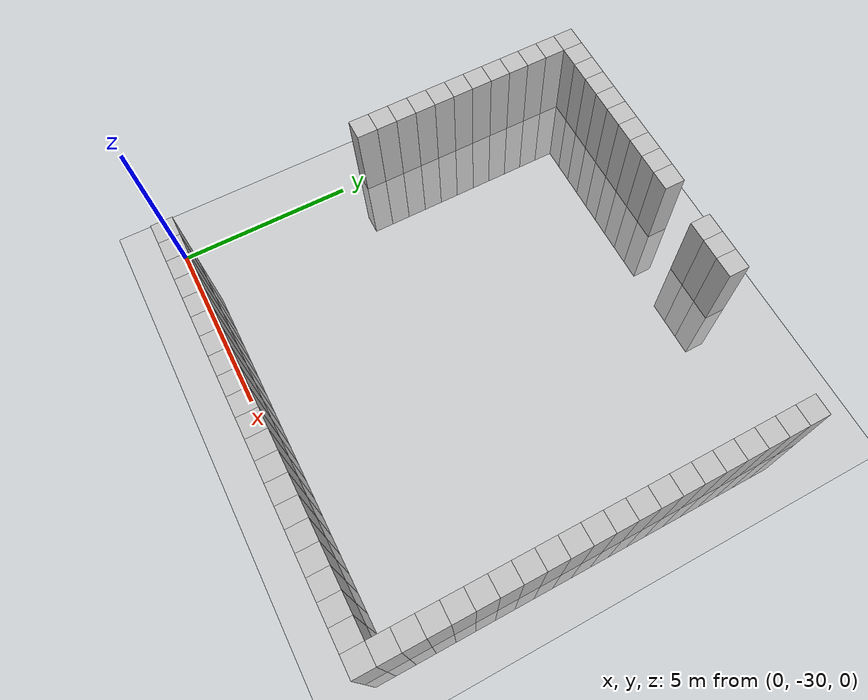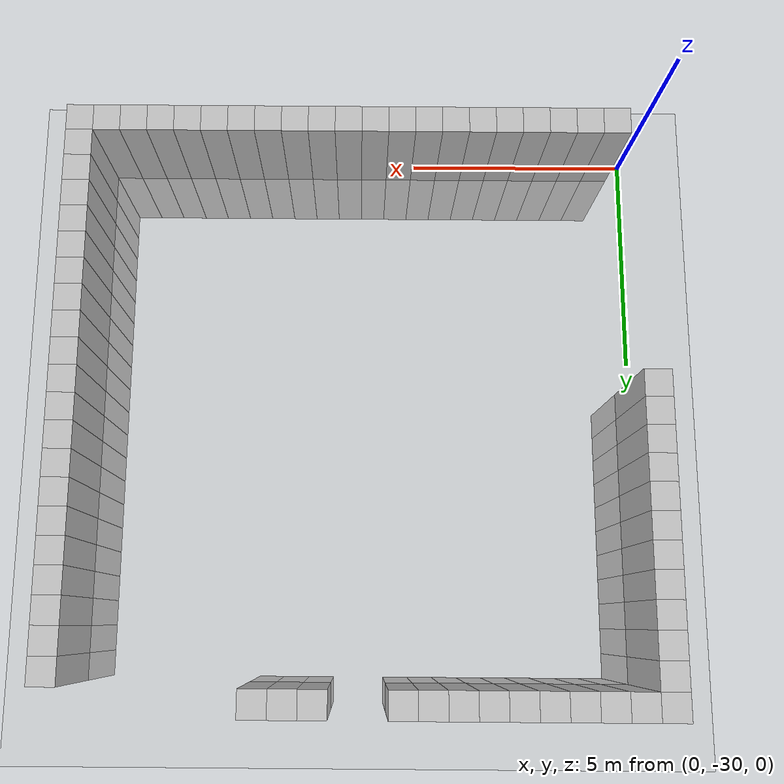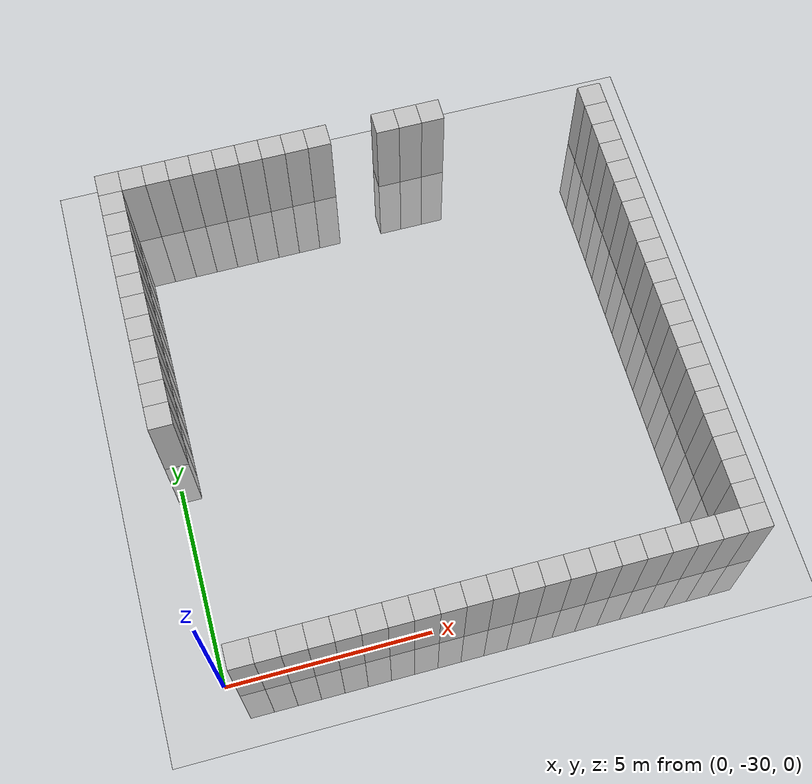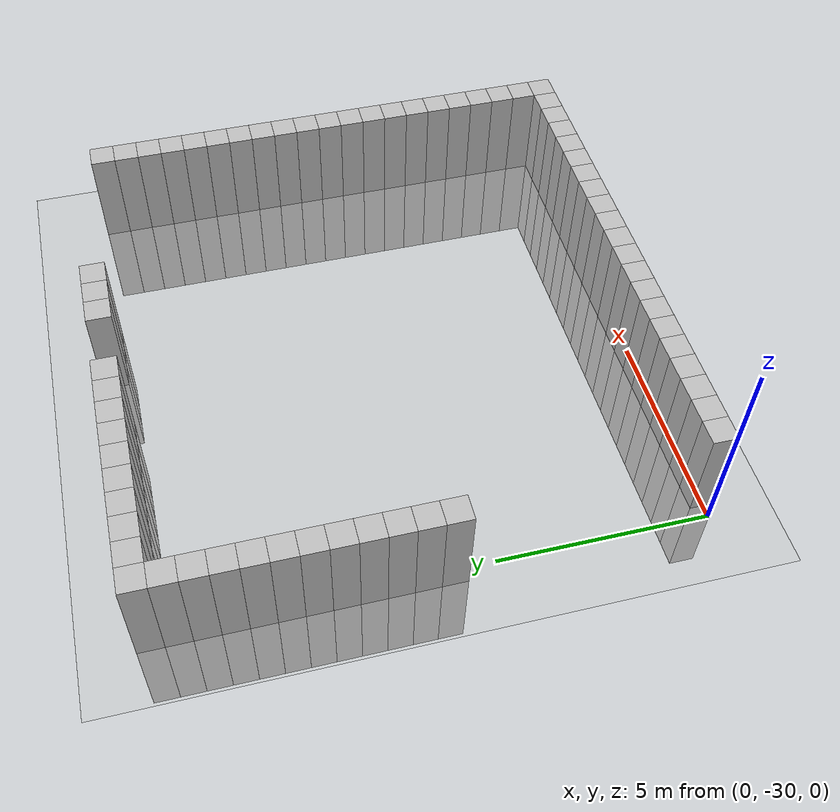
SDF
<sdf version="1.6">
 <world name="default">
  <model name="ground_plane">
   <static>1</static>
   <link name="link">
    <collision name="collision">
     <geometry><plane><normal>0 0 1</normal><size>100 100</size></plane></geometry>
     <surface><friction><ode><mu>100</mu><mu2>50</mu2></ode></friction></surface>
    </collision>
    <visual name="visual">
     <cast_shadows>0</cast_shadows>
     <geometry><plane><normal>0 0 1</normal><size>100 100</size></plane></geometry>
     <material>
      <script><uri>file://media/materials/scripts/gazebo.material</uri><name>Gazebo/Grey</name></script>
     </material>
    </visual>
   </link>
  </model>
  <model name="unit_cylinder_697">
   <static>1</static>
   <pose>0 -24 0 0 -0 0</pose>
   <link name="link">
    <inertial>
     <mass>1</mass>
     <inertia><ixx>0.145833</ixx><ixy>0</ixy><ixz>0</ixz><iyy>0.145833</iyy><iyz>0</iyz><izz>0.125</izz></inertia>
    </inertial>
    <collision name="collision"><geometry><box><size>0.6 0.6 5</size></box></geometry></collision>
    <visual name="visual">
     <geometry><box><size>0.6 0.6 5</size></box></geometry>
     <material><ambient>0.753 0.753 0.753 1</ambient><diffuse>0.753 0.753 0.753 1</diffuse></material>
     <material>
      <script><name>Gazebo/Grey</name><uri>file://media/materials/scripts/gazebo.material</uri></script>
     </material>
    </visual>
   </link>
  </model>
  <model name="unit_cylinder_698">
   <static>1</static>
   <pose>0 -23.4 0 0 -0 0</pose>
   <link name="link">
    <inertial>
     <mass>1</mass>
     <inertia><ixx>0.145833</ixx><ixy>0</ixy><ixz>0</ixz><iyy>0.145833</iyy><iyz>0</iyz><izz>0.125</izz></inertia>
    </inertial>
    <collision name="collision"><geometry><box><size>0.6 0.6 5</size></box></geometry></collision>
    <visual name="visual">
     <geometry><box><size>0.6 0.6 5</size></box></geometry>
     <material><ambient>0.753 0.753 0.753 1</ambient><diffuse>0.753 0.753 0.753 1</diffuse></material>
     <material>
      <script><name>Gazebo/Grey</name><uri>file://media/materials/scripts/gazebo.material</uri></script>
     </material>
    </visual>
   </link>
  </model>
  <model name="unit_cylinder_699">
   <static>1</static>
   <pose>0 -22.8 0 0 -0 0</pose>
   <link name="link">
    <inertial>
     <mass>1</mass>
     <inertia><ixx>0.145833</ixx><ixy>0</ixy><ixz>0</ixz><iyy>0.145833</iyy><iyz>0</iyz><izz>0.125</izz></inertia>
    </inertial>
    <collision name="collision"><geometry><box><size>0.6 0.6 5</size></box></geometry></collision>
    <visual name="visual">
     <geometry><box><size>0.6 0.6 5</size></box></geometry>
     <material><ambient>0.753 0.753 0.753 1</ambient><diffuse>0.753 0.753 0.753 1</diffuse></material>
     <material>
      <script><name>Gazebo/Grey</name><uri>file://media/materials/scripts/gazebo.material</uri></script>
     </material>
    </visual>
   </link>
  </model>
  <model name="unit_cylinder_700">
   <static>1</static>
   <pose>0 -22.2 0 0 -0 0</pose>
   <link name="link">
    <inertial>
     <mass>1</mass>
     <inertia><ixx>0.145833</ixx><ixy>0</ixy><ixz>0</ixz><iyy>0.145833</iyy><iyz>0</iyz><izz>0.125</izz></inertia>
    </inertial>
    <collision name="collision"><geometry><box><size>0.6 0.6 5</size></box></geometry></collision>
    <visual name="visual">
     <geometry><box><size>0.6 0.6 5</size></box></geometry>
     <material><ambient>0.753 0.753 0.753 1</ambient><diffuse>0.753 0.753 0.753 1</diffuse></material>
     <material>
      <script><name>Gazebo/Grey</name><uri>file://media/materials/scripts/gazebo.material</uri></script>
     </material>
    </visual>
   </link>
  </model>
  <model name="unit_cylinder_701">
   <static>1</static>
   <pose>0 -21.6 0 0 -0 0</pose>
   <link name="link">
    <inertial>
     <mass>1</mass>
     <inertia><ixx>0.145833</ixx><ixy>0</ixy><ixz>0</ixz><iyy>0.145833</iyy><iyz>0</iyz><izz>0.125</izz></inertia>
    </inertial>
    <collision name="collision"><geometry><box><size>0.6 0.6 5</size></box></geometry></collision>
    <visual name="visual">
     <geometry><box><size>0.6 0.6 5</size></box></geometry>
     <material><ambient>0.753 0.753 0.753 1</ambient><diffuse>0.753 0.753 0.753 1</diffuse></material>
     <material>
      <script><name>Gazebo/Grey</name><uri>file://media/materials/scripts/gazebo.material</uri></script>
     </material>
    </visual>
   </link>
  </model>
  <model name="unit_cylinder_702">
   <static>1</static>
   <pose>0 -21 0 0 -0 0</pose>
   <link name="link">
    <inertial>
     <mass>1</mass>
     <inertia><ixx>0.145833</ixx><ixy>0</ixy><ixz>0</ixz><iyy>0.145833</iyy><iyz>0</iyz><izz>0.125</izz></inertia>
    </inertial>
    <collision name="collision"><geometry><box><size>0.6 0.6 5</size></box></geometry></collision>
    <visual name="visual">
     <geometry><box><size>0.6 0.6 5</size></box></geometry>
     <material><ambient>0.753 0.753 0.753 1</ambient><diffuse>0.753 0.753 0.753 1</diffuse></material>
     <material>
      <script><name>Gazebo/Grey</name><uri>file://media/materials/scripts/gazebo.material</uri></script>
     </material>
    </visual>
   </link>
  </model>
  <model name="unit_cylinder_703">
   <static>1</static>
   <pose>0 -20.4 0 0 -0 0</pose>
   <link name="link">
    <inertial>
     <mass>1</mass>
     <inertia><ixx>0.145833</ixx><ixy>0</ixy><ixz>0</ixz><iyy>0.145833</iyy><iyz>0</iyz><izz>0.125</izz></inertia>
    </inertial>
    <collision name="collision"><geometry><box><size>0.6 0.6 5</size></box></geometry></collision>
    <visual name="visual">
     <geometry><box><size>0.6 0.6 5</size></box></geometry>
     <material><ambient>0.753 0.753 0.753 1</ambient><diffuse>0.753 0.753 0.753 1</diffuse></material>
     <material>
      <script><name>Gazebo/Grey</name><uri>file://media/materials/scripts/gazebo.material</uri></script>
     </material>
    </visual>
   </link>
  </model>
  <model name="unit_cylinder_704">
   <static>1</static>
   <pose>0 -19.8 0 0 -0 0</pose>
   <link name="link">
    <inertial>
     <mass>1</mass>
     <inertia><ixx>0.145833</ixx><ixy>0</ixy><ixz>0</ixz><iyy>0.145833</iyy><iyz>0</iyz><izz>0.125</izz></inertia>
    </inertial>
    <collision name="collision"><geometry><box><size>0.6 0.6 5</size></box></geometry></collision>
    <visual name="visual">
     <geometry><box><size>0.6 0.6 5</size></box></geometry>
     <material><ambient>0.753 0.753 0.753 1</ambient><diffuse>0.753 0.753 0.753 1</diffuse></material>
     <material>
      <script><name>Gazebo/Grey</name><uri>file://media/materials/scripts/gazebo.material</uri></script>
     </material>
    </visual>
   </link>
  </model>
  <model name="unit_cylinder_705">
   <static>1</static>
   <pose>0 -19.2 0 0 -0 0</pose>
   <link name="link">
    <inertial>
     <mass>1</mass>
     <inertia><ixx>0.145833</ixx><ixy>0</ixy><ixz>0</ixz><iyy>0.145833</iyy><iyz>0</iyz><izz>0.125</izz></inertia>
    </inertial>
    <collision name="collision"><geometry><box><size>0.6 0.6 5</size></box></geometry></collision>
    <visual name="visual">
     <geometry><box><size>0.6 0.6 5</size></box></geometry>
     <material><ambient>0.753 0.753 0.753 1</ambient><diffuse>0.753 0.753 0.753 1</diffuse></material>
     <material>
      <script><name>Gazebo/Grey</name><uri>file://media/materials/scripts/gazebo.material</uri></script>
     </material>
    </visual>
   </link>
  </model>
  <model name="unit_cylinder_706">
   <static>1</static>
   <pose>0 -18.6 0 0 -0 0</pose>
   <link name="link">
    <inertial>
     <mass>1</mass>
     <inertia><ixx>0.145833</ixx><ixy>0</ixy><ixz>0</ixz><iyy>0.145833</iyy><iyz>0</iyz><izz>0.125</izz></inertia>
    </inertial>
    <collision name="collision"><geometry><box><size>0.6 0.6 5</size></box></geometry></collision>
    <visual name="visual">
     <geometry><box><size>0.6 0.6 5</size></box></geometry>
     <material><ambient>0.753 0.753 0.753 1</ambient><diffuse>0.753 0.753 0.753 1</diffuse></material>
     <material>
      <script><name>Gazebo/Grey</name><uri>file://media/materials/scripts/gazebo.material</uri></script>
     </material>
    </visual>
   </link>
  </model>
  <model name="unit_cylinder_707">
   <static>1</static>
   <pose>0 -18 0 0 -0 0</pose>
   <link name="link">
    <inertial>
     <mass>1</mass>
     <inertia><ixx>0.145833</ixx><ixy>0</ixy><ixz>0</ixz><iyy>0.145833</iyy><iyz>0</iyz><izz>0.125</izz></inertia>
    </inertial>
    <collision name="collision"><geometry><box><size>0.6 0.6 5</size></box></geometry></collision>
    <visual name="visual">
     <geometry><box><size>0.6 0.6 5</size></box></geometry>
     <material><ambient>0.753 0.753 0.753 1</ambient><diffuse>0.753 0.753 0.753 1</diffuse></material>
     <material>
      <script><name>Gazebo/Grey</name><uri>file://media/materials/scripts/gazebo.material</uri></script>
     </material>
    </visual>
   </link>
  </model>
  <model name="unit_cylinder_708">
   <static>1</static>
   <pose>0 -17.4 0 0 -0 0</pose>
   <link name="link">
    <inertial>
     <mass>1</mass>
     <inertia><ixx>0.145833</ixx><ixy>0</ixy><ixz>0</ixz><iyy>0.145833</iyy><iyz>0</iyz><izz>0.125</izz></inertia>
    </inertial>
    <collision name="collision"><geometry><box><size>0.6 0.6 5</size></box></geometry></collision>
    <visual name="visual">
     <geometry><box><size>0.6 0.6 5</size></box></geometry>
     <material><ambient>0.753 0.753 0.753 1</ambient><diffuse>0.753 0.753 0.753 1</diffuse></material>
     <material>
      <script><name>Gazebo/Grey</name><uri>file://media/materials/scripts/gazebo.material</uri></script>
     </material>
    </visual>
   </link>
  </model>
  <model name="unit_cylinder_730">
   <static>1</static>
   <pose>0.6 -30 0 0 -0 0</pose>
   <link name="link">
    <inertial>
     <mass>1</mass>
     <inertia><ixx>0.145833</ixx><ixy>0</ixy><ixz>0</ixz><iyy>0.145833</iyy><iyz>0</iyz><izz>0.125</izz></inertia>
    </inertial>
    <collision name="collision"><geometry><box><size>0.6 0.6 5</size></box></geometry></collision>
    <visual name="visual">
     <geometry><box><size>0.6 0.6 5</size></box></geometry>
     <material><ambient>0.753 0.753 0.753 1</ambient><diffuse>0.753 0.753 0.753 1</diffuse></material>
     <material>
      <script><name>Gazebo/Grey</name><uri>file://media/materials/scripts/gazebo.material</uri></script>
     </material>
    </visual>
   </link>
  </model>
  <model name="unit_cylinder_731">
   <static>1</static>
   <pose>0.6 -17.4 0 0 -0 0</pose>
   <link name="link">
    <inertial>
     <mass>1</mass>
     <inertia><ixx>0.145833</ixx><ixy>0</ixy><ixz>0</ixz><iyy>0.145833</iyy><iyz>0</iyz><izz>0.125</izz></inertia>
    </inertial>
    <collision name="collision"><geometry><box><size>0.6 0.6 5</size></box></geometry></collision>
    <visual name="visual">
     <geometry><box><size>0.6 0.6 5</size></box></geometry>
     <material><ambient>0.753 0.753 0.753 1</ambient><diffuse>0.753 0.753 0.753 1</diffuse></material>
     <material>
      <script><name>Gazebo/Grey</name><uri>file://media/materials/scripts/gazebo.material</uri></script>
     </material>
    </visual>
   </link>
  </model>
  <model name="unit_cylinder_733">
   <static>1</static>
   <pose>1.2 -30 0 0 -0 0</pose>
   <link name="link">
    <inertial>
     <mass>1</mass>
     <inertia><ixx>0.145833</ixx><ixy>0</ixy><ixz>0</ixz><iyy>0.145833</iyy><iyz>0</iyz><izz>0.125</izz></inertia>
    </inertial>
    <collision name="collision"><geometry><box><size>0.6 0.6 5</size></box></geometry></collision>
    <visual name="visual">
     <geometry><box><size>0.6 0.6 5</size></box></geometry>
     <material><ambient>0.753 0.753 0.753 1</ambient><diffuse>0.753 0.753 0.753 1</diffuse></material>
     <material>
      <script><name>Gazebo/Grey</name><uri>file://media/materials/scripts/gazebo.material</uri></script>
     </material>
    </visual>
   </link>
  </model>
  <model name="unit_cylinder_734">
   <static>1</static>
   <pose>1.2 -17.4 0 0 -0 0</pose>
   <link name="link">
    <inertial>
     <mass>1</mass>
     <inertia><ixx>0.145833</ixx><ixy>0</ixy><ixz>0</ixz><iyy>0.145833</iyy><iyz>0</iyz><izz>0.125</izz></inertia>
    </inertial>
    <collision name="collision"><geometry><box><size>0.6 0.6 5</size></box></geometry></collision>
    <visual name="visual">
     <geometry><box><size>0.6 0.6 5</size></box></geometry>
     <material><ambient>0.753 0.753 0.753 1</ambient><diffuse>0.753 0.753 0.753 1</diffuse></material>
     <material>
      <script><name>Gazebo/Grey</name><uri>file://media/materials/scripts/gazebo.material</uri></script>
     </material>
    </visual>
   </link>
  </model>
  <model name="unit_cylinder_736">
   <static>1</static>
   <pose>1.8 -30 0 0 -0 0</pose>
   <link name="link">
    <inertial>
     <mass>1</mass>
     <inertia><ixx>0.145833</ixx><ixy>0</ixy><ixz>0</ixz><iyy>0.145833</iyy><iyz>0</iyz><izz>0.125</izz></inertia>
    </inertial>
    <collision name="collision"><geometry><box><size>0.6 0.6 5</size></box></geometry></collision>
    <visual name="visual">
     <geometry><box><size>0.6 0.6 5</size></box></geometry>
     <material><ambient>0.753 0.753 0.753 1</ambient><diffuse>0.753 0.753 0.753 1</diffuse></material>
     <material>
      <script><name>Gazebo/Grey</name><uri>file://media/materials/scripts/gazebo.material</uri></script>
     </material>
    </visual>
   </link>
  </model>
  <model name="unit_cylinder_737">
   <static>1</static>
   <pose>1.8 -17.4 0 0 -0 0</pose>
   <link name="link">
    <inertial>
     <mass>1</mass>
     <inertia><ixx>0.145833</ixx><ixy>0</ixy><ixz>0</ixz><iyy>0.145833</iyy><iyz>0</iyz><izz>0.125</izz></inertia>
    </inertial>
    <collision name="collision"><geometry><box><size>0.6 0.6 5</size></box></geometry></collision>
    <visual name="visual">
     <geometry><box><size>0.6 0.6 5</size></box></geometry>
     <material><ambient>0.753 0.753 0.753 1</ambient><diffuse>0.753 0.753 0.753 1</diffuse></material>
     <material>
      <script><name>Gazebo/Grey</name><uri>file://media/materials/scripts/gazebo.material</uri></script>
     </material>
    </visual>
   </link>
  </model>
  <model name="unit_cylinder_739">
   <static>1</static>
   <pose>2.4 -30 0 0 -0 0</pose>
   <link name="link">
    <inertial>
     <mass>1</mass>
     <inertia><ixx>0.145833</ixx><ixy>0</ixy><ixz>0</ixz><iyy>0.145833</iyy><iyz>0</iyz><izz>0.125</izz></inertia>
    </inertial>
    <collision name="collision"><geometry><box><size>0.6 0.6 5</size></box></geometry></collision>
    <visual name="visual">
     <geometry><box><size>0.6 0.6 5</size></box></geometry>
     <material><ambient>0.753 0.753 0.753 1</ambient><diffuse>0.753 0.753 0.753 1</diffuse></material>
     <material>
      <script><name>Gazebo/Grey</name><uri>file://media/materials/scripts/gazebo.material</uri></script>
     </material>
    </visual>
   </link>
  </model>
  <model name="unit_cylinder_740">
   <static>1</static>
   <pose>2.4 -17.4 0 0 -0 0</pose>
   <link name="link">
    <inertial>
     <mass>1</mass>
     <inertia><ixx>0.145833</ixx><ixy>0</ixy><ixz>0</ixz><iyy>0.145833</iyy><iyz>0</iyz><izz>0.125</izz></inertia>
    </inertial>
    <collision name="collision"><geometry><box><size>0.6 0.6 5</size></box></geometry></collision>
    <visual name="visual">
     <geometry><box><size>0.6 0.6 5</size></box></geometry>
     <material><ambient>0.753 0.753 0.753 1</ambient><diffuse>0.753 0.753 0.753 1</diffuse></material>
     <material>
      <script><name>Gazebo/Grey</name><uri>file://media/materials/scripts/gazebo.material</uri></script>
     </material>
    </visual>
   </link>
  </model>
  <model name="unit_cylinder_742">
   <static>1</static>
   <pose>3 -30 0 0 -0 0</pose>
   <link name="link">
    <inertial>
     <mass>1</mass>
     <inertia><ixx>0.145833</ixx><ixy>0</ixy><ixz>0</ixz><iyy>0.145833</iyy><iyz>0</iyz><izz>0.125</izz></inertia>
    </inertial>
    <collision name="collision"><geometry><box><size>0.6 0.6 5</size></box></geometry></collision>
    <visual name="visual">
     <geometry><box><size>0.6 0.6 5</size></box></geometry>
     <material><ambient>0.753 0.753 0.753 1</ambient><diffuse>0.753 0.753 0.753 1</diffuse></material>
     <material>
      <script><name>Gazebo/Grey</name><uri>file://media/materials/scripts/gazebo.material</uri></script>
     </material>
    </visual>
   </link>
  </model>
  <model name="unit_cylinder_743">
   <static>1</static>
   <pose>3 -17.4 0 0 -0 0</pose>
   <link name="link">
    <inertial>
     <mass>1</mass>
     <inertia><ixx>0.145833</ixx><ixy>0</ixy><ixz>0</ixz><iyy>0.145833</iyy><iyz>0</iyz><izz>0.125</izz></inertia>
    </inertial>
    <collision name="collision"><geometry><box><size>0.6 0.6 5</size></box></geometry></collision>
    <visual name="visual">
     <geometry><box><size>0.6 0.6 5</size></box></geometry>
     <material><ambient>0.753 0.753 0.753 1</ambient><diffuse>0.753 0.753 0.753 1</diffuse></material>
     <material>
      <script><name>Gazebo/Grey</name><uri>file://media/materials/scripts/gazebo.material</uri></script>
     </material>
    </visual>
   </link>
  </model>
  <model name="unit_cylinder_745">
   <static>1</static>
   <pose>3.6 -30 0 0 -0 0</pose>
   <link name="link">
    <inertial>
     <mass>1</mass>
     <inertia><ixx>0.145833</ixx><ixy>0</ixy><ixz>0</ixz><iyy>0.145833</iyy><iyz>0</iyz><izz>0.125</izz></inertia>
    </inertial>
    <collision name="collision"><geometry><box><size>0.6 0.6 5</size></box></geometry></collision>
    <visual name="visual">
     <geometry><box><size>0.6 0.6 5</size></box></geometry>
     <material><ambient>0.753 0.753 0.753 1</ambient><diffuse>0.753 0.753 0.753 1</diffuse></material>
     <material>
      <script><name>Gazebo/Grey</name><uri>file://media/materials/scripts/gazebo.material</uri></script>
     </material>
    </visual>
   </link>
  </model>
  <model name="unit_cylinder_746">
   <static>1</static>
   <pose>3.6 -17.4 0 0 -0 0</pose>
   <link name="link">
    <inertial>
     <mass>1</mass>
     <inertia><ixx>0.145833</ixx><ixy>0</ixy><ixz>0</ixz><iyy>0.145833</iyy><iyz>0</iyz><izz>0.125</izz></inertia>
    </inertial>
    <collision name="collision"><geometry><box><size>0.6 0.6 5</size></box></geometry></collision>
    <visual name="visual">
     <geometry><box><size>0.6 0.6 5</size></box></geometry>
     <material><ambient>0.753 0.753 0.753 1</ambient><diffuse>0.753 0.753 0.753 1</diffuse></material>
     <material>
      <script><name>Gazebo/Grey</name><uri>file://media/materials/scripts/gazebo.material</uri></script>
     </material>
    </visual>
   </link>
  </model>
  <model name="unit_cylinder_748">
   <static>1</static>
   <pose>4.2 -30 0 0 -0 0</pose>
   <link name="link">
    <inertial>
     <mass>1</mass>
     <inertia><ixx>0.145833</ixx><ixy>0</ixy><ixz>0</ixz><iyy>0.145833</iyy><iyz>0</iyz><izz>0.125</izz></inertia>
    </inertial>
    <collision name="collision"><geometry><box><size>0.6 0.6 5</size></box></geometry></collision>
    <visual name="visual">
     <geometry><box><size>0.6 0.6 5</size></box></geometry>
     <material><ambient>0.753 0.753 0.753 1</ambient><diffuse>0.753 0.753 0.753 1</diffuse></material>
     <material>
      <script><name>Gazebo/Grey</name><uri>file://media/materials/scripts/gazebo.material</uri></script>
     </material>
    </visual>
   </link>
  </model>
  <model name="unit_cylinder_749">
   <static>1</static>
   <pose>4.2 -17.4 0 0 -0 0</pose>
   <link name="link">
    <inertial>
     <mass>1</mass>
     <inertia><ixx>0.145833</ixx><ixy>0</ixy><ixz>0</ixz><iyy>0.145833</iyy><iyz>0</iyz><izz>0.125</izz></inertia>
    </inertial>
    <collision name="collision"><geometry><box><size>0.6 0.6 5</size></box></geometry></collision>
    <visual name="visual">
     <geometry><box><size>0.6 0.6 5</size></box></geometry>
     <material><ambient>0.753 0.753 0.753 1</ambient><diffuse>0.753 0.753 0.753 1</diffuse></material>
     <material>
      <script><name>Gazebo/Grey</name><uri>file://media/materials/scripts/gazebo.material</uri></script>
     </material>
    </visual>
   </link>
  </model>
  <model name="unit_cylinder_751">
   <static>1</static>
   <pose>4.8 -30 0 0 -0 0</pose>
   <link name="link">
    <inertial>
     <mass>1</mass>
     <inertia><ixx>0.145833</ixx><ixy>0</ixy><ixz>0</ixz><iyy>0.145833</iyy><iyz>0</iyz><izz>0.125</izz></inertia>
    </inertial>
    <collision name="collision"><geometry><box><size>0.6 0.6 5</size></box></geometry></collision>
    <visual name="visual">
     <geometry><box><size>0.6 0.6 5</size></box></geometry>
     <material><ambient>0.753 0.753 0.753 1</ambient><diffuse>0.753 0.753 0.753 1</diffuse></material>
     <material>
      <script><name>Gazebo/Grey</name><uri>file://media/materials/scripts/gazebo.material</uri></script>
     </material>
    </visual>
   </link>
  </model>
  <model name="unit_cylinder_752">
   <static>1</static>
   <pose>4.8 -17.4 0 0 -0 0</pose>
   <link name="link">
    <inertial>
     <mass>1</mass>
     <inertia><ixx>0.145833</ixx><ixy>0</ixy><ixz>0</ixz><iyy>0.145833</iyy><iyz>0</iyz><izz>0.125</izz></inertia>
    </inertial>
    <collision name="collision"><geometry><box><size>0.6 0.6 5</size></box></geometry></collision>
    <visual name="visual">
     <geometry><box><size>0.6 0.6 5</size></box></geometry>
     <material><ambient>0.753 0.753 0.753 1</ambient><diffuse>0.753 0.753 0.753 1</diffuse></material>
     <material>
      <script><name>Gazebo/Grey</name><uri>file://media/materials/scripts/gazebo.material</uri></script>
     </material>
    </visual>
   </link>
  </model>
  <model name="unit_cylinder_754">
   <static>1</static>
   <pose>5.4 -30 0 0 -0 0</pose>
   <link name="link">
    <inertial>
     <mass>1</mass>
     <inertia><ixx>0.145833</ixx><ixy>0</ixy><ixz>0</ixz><iyy>0.145833</iyy><iyz>0</iyz><izz>0.125</izz></inertia>
    </inertial>
    <collision name="collision"><geometry><box><size>0.6 0.6 5</size></box></geometry></collision>
    <visual name="visual">
     <geometry><box><size>0.6 0.6 5</size></box></geometry>
     <material><ambient>0.753 0.753 0.753 1</ambient><diffuse>0.753 0.753 0.753 1</diffuse></material>
     <material>
      <script><name>Gazebo/Grey</name><uri>file://media/materials/scripts/gazebo.material</uri></script>
     </material>
    </visual>
   </link>
  </model>
  <model name="unit_cylinder_755">
   <static>1</static>
   <pose>5.4 -17.4 0 0 -0 0</pose>
   <link name="link">
    <inertial>
     <mass>1</mass>
     <inertia><ixx>0.145833</ixx><ixy>0</ixy><ixz>0</ixz><iyy>0.145833</iyy><iyz>0</iyz><izz>0.125</izz></inertia>
    </inertial>
    <collision name="collision"><geometry><box><size>0.6 0.6 5</size></box></geometry></collision>
    <visual name="visual">
     <geometry><box><size>0.6 0.6 5</size></box></geometry>
     <material><ambient>0.753 0.753 0.753 1</ambient><diffuse>0.753 0.753 0.753 1</diffuse></material>
     <material>
      <script><name>Gazebo/Grey</name><uri>file://media/materials/scripts/gazebo.material</uri></script>
     </material>
    </visual>
   </link>
  </model>
  <model name="unit_cylinder_757">
   <static>1</static>
   <pose>6 -30 0 0 -0 0</pose>
   <link name="link">
    <inertial>
     <mass>1</mass>
     <inertia><ixx>0.145833</ixx><ixy>0</ixy><ixz>0</ixz><iyy>0.145833</iyy><iyz>0</iyz><izz>0.125</izz></inertia>
    </inertial>
    <collision name="collision"><geometry><box><size>0.6 0.6 5</size></box></geometry></collision>
    <visual name="visual">
     <geometry><box><size>0.6 0.6 5</size></box></geometry>
     <material><ambient>0.753 0.753 0.753 1</ambient><diffuse>0.753 0.753 0.753 1</diffuse></material>
     <material>
      <script><name>Gazebo/Grey</name><uri>file://media/materials/scripts/gazebo.material</uri></script>
     </material>
    </visual>
   </link>
  </model>
  <model name="unit_cylinder_760">
   <static>1</static>
   <pose>6.6 -30 0 0 -0 0</pose>
   <link name="link">
    <inertial>
     <mass>1</mass>
     <inertia><ixx>0.145833</ixx><ixy>0</ixy><ixz>0</ixz><iyy>0.145833</iyy><iyz>0</iyz><izz>0.125</izz></inertia>
    </inertial>
    <collision name="collision"><geometry><box><size>0.6 0.6 5</size></box></geometry></collision>
    <visual name="visual">
     <geometry><box><size>0.6 0.6 5</size></box></geometry>
     <material><ambient>0.753 0.753 0.753 1</ambient><diffuse>0.753 0.753 0.753 1</diffuse></material>
     <material>
      <script><name>Gazebo/Grey</name><uri>file://media/materials/scripts/gazebo.material</uri></script>
     </material>
    </visual>
   </link>
  </model>
  <model name="unit_cylinder_763">
   <static>1</static>
   <pose>7.2 -30 0 0 -0 0</pose>
   <link name="link">
    <inertial>
     <mass>1</mass>
     <inertia><ixx>0.145833</ixx><ixy>0</ixy><ixz>0</ixz><iyy>0.145833</iyy><iyz>0</iyz><izz>0.125</izz></inertia>
    </inertial>
    <collision name="collision"><geometry><box><size>0.6 0.6 5</size></box></geometry></collision>
    <visual name="visual">
     <geometry><box><size>0.6 0.6 5</size></box></geometry>
     <material><ambient>0.753 0.753 0.753 1</ambient><diffuse>0.753 0.753 0.753 1</diffuse></material>
     <material>
      <script><name>Gazebo/Grey</name><uri>file://media/materials/scripts/gazebo.material</uri></script>
     </material>
    </visual>
   </link>
  </model>
  <model name="unit_cylinder_764">
   <static>1</static>
   <pose>7.2 -17.4 0 0 -0 0</pose>
   <link name="link">
    <inertial>
     <mass>1</mass>
     <inertia><ixx>0.145833</ixx><ixy>0</ixy><ixz>0</ixz><iyy>0.145833</iyy><iyz>0</iyz><izz>0.125</izz></inertia>
    </inertial>
    <collision name="collision"><geometry><box><size>0.6 0.6 5</size></box></geometry></collision>
    <visual name="visual">
     <geometry><box><size>0.6 0.6 5</size></box></geometry>
     <material><ambient>0.753 0.753 0.753 1</ambient><diffuse>0.753 0.753 0.753 1</diffuse></material>
     <material>
      <script><name>Gazebo/Grey</name><uri>file://media/materials/scripts/gazebo.material</uri></script>
     </material>
    </visual>
   </link>
  </model>
  <model name="unit_cylinder_766">
   <static>1</static>
   <pose>7.8 -30 0 0 -0 0</pose>
   <link name="link">
    <inertial>
     <mass>1</mass>
     <inertia><ixx>0.145833</ixx><ixy>0</ixy><ixz>0</ixz><iyy>0.145833</iyy><iyz>0</iyz><izz>0.125</izz></inertia>
    </inertial>
    <collision name="collision"><geometry><box><size>0.6 0.6 5</size></box></geometry></collision>
    <visual name="visual">
     <geometry><box><size>0.6 0.6 5</size></box></geometry>
     <material><ambient>0.753 0.753 0.753 1</ambient><diffuse>0.753 0.753 0.753 1</diffuse></material>
     <material>
      <script><name>Gazebo/Grey</name><uri>file://media/materials/scripts/gazebo.material</uri></script>
     </material>
    </visual>
   </link>
  </model>
  <model name="unit_cylinder_767">
   <static>1</static>
   <pose>7.8 -17.4 0 0 -0 0</pose>
   <link name="link">
    <inertial>
     <mass>1</mass>
     <inertia><ixx>0.145833</ixx><ixy>0</ixy><ixz>0</ixz><iyy>0.145833</iyy><iyz>0</iyz><izz>0.125</izz></inertia>
    </inertial>
    <collision name="collision"><geometry><box><size>0.6 0.6 5</size></box></geometry></collision>
    <visual name="visual">
     <geometry><box><size>0.6 0.6 5</size></box></geometry>
     <material><ambient>0.753 0.753 0.753 1</ambient><diffuse>0.753 0.753 0.753 1</diffuse></material>
     <material>
      <script><name>Gazebo/Grey</name><uri>file://media/materials/scripts/gazebo.material</uri></script>
     </material>
    </visual>
   </link>
  </model>
  <model name="unit_cylinder_769">
   <static>1</static>
   <pose>8.4 -30 0 0 -0 0</pose>
   <link name="link">
    <inertial>
     <mass>1</mass>
     <inertia><ixx>0.145833</ixx><ixy>0</ixy><ixz>0</ixz><iyy>0.145833</iyy><iyz>0</iyz><izz>0.125</izz></inertia>
    </inertial>
    <collision name="collision"><geometry><box><size>0.6 0.6 5</size></box></geometry></collision>
    <visual name="visual">
     <geometry><box><size>0.6 0.6 5</size></box></geometry>
     <material><ambient>0.753 0.753 0.753 1</ambient><diffuse>0.753 0.753 0.753 1</diffuse></material>
     <material>
      <script><name>Gazebo/Grey</name><uri>file://media/materials/scripts/gazebo.material</uri></script>
     </material>
    </visual>
   </link>
  </model>
  <model name="unit_cylinder_770">
   <static>1</static>
   <pose>8.4 -17.4 0 0 -0 0</pose>
   <link name="link">
    <inertial>
     <mass>1</mass>
     <inertia><ixx>0.145833</ixx><ixy>0</ixy><ixz>0</ixz><iyy>0.145833</iyy><iyz>0</iyz><izz>0.125</izz></inertia>
    </inertial>
    <collision name="collision"><geometry><box><size>0.6 0.6 5</size></box></geometry></collision>
    <visual name="visual">
     <geometry><box><size>0.6 0.6 5</size></box></geometry>
     <material><ambient>0.753 0.753 0.753 1</ambient><diffuse>0.753 0.753 0.753 1</diffuse></material>
     <material>
      <script><name>Gazebo/Grey</name><uri>file://media/materials/scripts/gazebo.material</uri></script>
     </material>
    </visual>
   </link>
  </model>
  <model name="unit_cylinder_772">
   <static>1</static>
   <pose>9 -30 0 0 -0 0</pose>
   <link name="link">
    <inertial>
     <mass>1</mass>
     <inertia><ixx>0.145833</ixx><ixy>0</ixy><ixz>0</ixz><iyy>0.145833</iyy><iyz>0</iyz><izz>0.125</izz></inertia>
    </inertial>
    <collision name="collision"><geometry><box><size>0.6 0.6 5</size></box></geometry></collision>
    <visual name="visual">
     <geometry><box><size>0.6 0.6 5</size></box></geometry>
     <material><ambient>0.753 0.753 0.753 1</ambient><diffuse>0.753 0.753 0.753 1</diffuse></material>
     <material>
      <script><name>Gazebo/Grey</name><uri>file://media/materials/scripts/gazebo.material</uri></script>
     </material>
    </visual>
   </link>
  </model>
  <model name="unit_cylinder_775">
   <static>1</static>
   <pose>9.6 -30 0 0 -0 0</pose>
   <link name="link">
    <inertial>
     <mass>1</mass>
     <inertia><ixx>0.145833</ixx><ixy>0</ixy><ixz>0</ixz><iyy>0.145833</iyy><iyz>0</iyz><izz>0.125</izz></inertia>
    </inertial>
    <collision name="collision"><geometry><box><size>0.6 0.6 5</size></box></geometry></collision>
    <visual name="visual">
     <geometry><box><size>0.6 0.6 5</size></box></geometry>
     <material><ambient>0.753 0.753 0.753 1</ambient><diffuse>0.753 0.753 0.753 1</diffuse></material>
     <material>
      <script><name>Gazebo/Grey</name><uri>file://media/materials/scripts/gazebo.material</uri></script>
     </material>
    </visual>
   </link>
  </model>
  <model name="unit_cylinder_778">
   <static>1</static>
   <pose>10.2 -30 0 0 -0 0</pose>
   <link name="link">
    <inertial>
     <mass>1</mass>
     <inertia><ixx>0.145833</ixx><ixy>0</ixy><ixz>0</ixz><iyy>0.145833</iyy><iyz>0</iyz><izz>0.125</izz></inertia>
    </inertial>
    <collision name="collision"><geometry><box><size>0.6 0.6 5</size></box></geometry></collision>
    <visual name="visual">
     <geometry><box><size>0.6 0.6 5</size></box></geometry>
     <material><ambient>0.753 0.753 0.753 1</ambient><diffuse>0.753 0.753 0.753 1</diffuse></material>
     <material>
      <script><name>Gazebo/Grey</name><uri>file://media/materials/scripts/gazebo.material</uri></script>
     </material>
    </visual>
   </link>
  </model>
  <model name="unit_cylinder_781">
   <static>1</static>
   <pose>10.8 -30 0 0 -0 0</pose>
   <link name="link">
    <inertial>
     <mass>1</mass>
     <inertia><ixx>0.145833</ixx><ixy>0</ixy><ixz>0</ixz><iyy>0.145833</iyy><iyz>0</iyz><izz>0.125</izz></inertia>
    </inertial>
    <collision name="collision"><geometry><box><size>0.6 0.6 5</size></box></geometry></collision>
    <visual name="visual">
     <geometry><box><size>0.6 0.6 5</size></box></geometry>
     <material><ambient>0.753 0.753 0.753 1</ambient><diffuse>0.753 0.753 0.753 1</diffuse></material>
     <material>
      <script><name>Gazebo/Grey</name><uri>file://media/materials/scripts/gazebo.material</uri></script>
     </material>
    </visual>
   </link>
  </model>
  <model name="unit_cylinder_784">
   <static>1</static>
   <pose>11.4 -30 0 0 -0 0</pose>
   <link name="link">
    <inertial>
     <mass>1</mass>
     <inertia><ixx>0.145833</ixx><ixy>0</ixy><ixz>0</ixz><iyy>0.145833</iyy><iyz>0</iyz><izz>0.125</izz></inertia>
    </inertial>
    <collision name="collision"><geometry><box><size>0.6 0.6 5</size></box></geometry></collision>
    <visual name="visual">
     <geometry><box><size>0.6 0.6 5</size></box></geometry>
     <material><ambient>0.753 0.753 0.753 1</ambient><diffuse>0.753 0.753 0.753 1</diffuse></material>
     <material>
      <script><name>Gazebo/Grey</name><uri>file://media/materials/scripts/gazebo.material</uri></script>
     </material>
    </visual>
   </link>
  </model>
  <model name="unit_cylinder_787">
   <static>1</static>
   <pose>12 -30 0 0 -0 0</pose>
   <link name="link">
    <inertial>
     <mass>1</mass>
     <inertia><ixx>0.145833</ixx><ixy>0</ixy><ixz>0</ixz><iyy>0.145833</iyy><iyz>0</iyz><izz>0.125</izz></inertia>
    </inertial>
    <collision name="collision"><geometry><box><size>0.6 0.6 5</size></box></geometry></collision>
    <visual name="visual">
     <geometry><box><size>0.6 0.6 5</size></box></geometry>
     <material><ambient>0.753 0.753 0.753 1</ambient><diffuse>0.753 0.753 0.753 1</diffuse></material>
     <material>
      <script><name>Gazebo/Grey</name><uri>file://media/materials/scripts/gazebo.material</uri></script>
     </material>
    </visual>
   </link>
  </model>
  <model name="unit_cylinder_790">
   <static>1</static>
   <pose>12.6 -30 0 0 -0 0</pose>
   <link name="link">
    <inertial>
     <mass>1</mass>
     <inertia><ixx>0.145833</ixx><ixy>0</ixy><ixz>0</ixz><iyy>0.145833</iyy><iyz>0</iyz><izz>0.125</izz></inertia>
    </inertial>
    <collision name="collision"><geometry><box><size>0.6 0.6 5</size></box></geometry></collision>
    <visual name="visual">
     <geometry><box><size>0.6 0.6 5</size></box></geometry>
     <material><ambient>0.753 0.753 0.753 1</ambient><diffuse>0.753 0.753 0.753 1</diffuse></material>
     <material>
      <script><name>Gazebo/Grey</name><uri>file://media/materials/scripts/gazebo.material</uri></script>
     </material>
    </visual>
   </link>
  </model>
  <model name="unit_cylinder_791">
   <static>1</static>
   <pose>12.6 -29.4 0 0 -0 0</pose>
   <link name="link">
    <inertial>
     <mass>1</mass>
     <inertia><ixx>0.145833</ixx><ixy>0</ixy><ixz>0</ixz><iyy>0.145833</iyy><iyz>0</iyz><izz>0.125</izz></inertia>
    </inertial>
    <collision name="collision"><geometry><box><size>0.6 0.6 5</size></box></geometry></collision>
    <visual name="visual">
     <geometry><box><size>0.6 0.6 5</size></box></geometry>
     <material><ambient>0.753 0.753 0.753 1</ambient><diffuse>0.753 0.753 0.753 1</diffuse></material>
     <material>
      <script><name>Gazebo/Grey</name><uri>file://media/materials/scripts/gazebo.material</uri></script>
     </material>
    </visual>
   </link>
  </model>
  <model name="unit_cylinder_792">
   <static>1</static>
   <pose>12.6 -28.8 0 0 -0 0</pose>
   <link name="link">
    <inertial>
     <mass>1</mass>
     <inertia><ixx>0.145833</ixx><ixy>0</ixy><ixz>0</ixz><iyy>0.145833</iyy><iyz>0</iyz><izz>0.125</izz></inertia>
    </inertial>
    <collision name="collision"><geometry><box><size>0.6 0.6 5</size></box></geometry></collision>
    <visual name="visual">
     <geometry><box><size>0.6 0.6 5</size></box></geometry>
     <material><ambient>0.753 0.753 0.753 1</ambient><diffuse>0.753 0.753 0.753 1</diffuse></material>
     <material>
      <script><name>Gazebo/Grey</name><uri>file://media/materials/scripts/gazebo.material</uri></script>
     </material>
    </visual>
   </link>
  </model>
  <model name="unit_cylinder_793">
   <static>1</static>
   <pose>12.6 -28.2 0 0 -0 0</pose>
   <link name="link">
    <inertial>
     <mass>1</mass>
     <inertia><ixx>0.145833</ixx><ixy>0</ixy><ixz>0</ixz><iyy>0.145833</iyy><iyz>0</iyz><izz>0.125</izz></inertia>
    </inertial>
    <collision name="collision"><geometry><box><size>0.6 0.6 5</size></box></geometry></collision>
    <visual name="visual">
     <geometry><box><size>0.6 0.6 5</size></box></geometry>
     <material><ambient>0.753 0.753 0.753 1</ambient><diffuse>0.753 0.753 0.753 1</diffuse></material>
     <material>
      <script><name>Gazebo/Grey</name><uri>file://media/materials/scripts/gazebo.material</uri></script>
     </material>
    </visual>
   </link>
  </model>
  <model name="unit_cylinder_794">
   <static>1</static>
   <pose>12.6 -27.6 0 0 -0 0</pose>
   <link name="link">
    <inertial>
     <mass>1</mass>
     <inertia><ixx>0.145833</ixx><ixy>0</ixy><ixz>0</ixz><iyy>0.145833</iyy><iyz>0</iyz><izz>0.125</izz></inertia>
    </inertial>
    <collision name="collision"><geometry><box><size>0.6 0.6 5</size></box></geometry></collision>
    <visual name="visual">
     <geometry><box><size>0.6 0.6 5</size></box></geometry>
     <material><ambient>0.753 0.753 0.753 1</ambient><diffuse>0.753 0.753 0.753 1</diffuse></material>
     <material>
      <script><name>Gazebo/Grey</name><uri>file://media/materials/scripts/gazebo.material</uri></script>
     </material>
    </visual>
   </link>
  </model>
  <model name="unit_cylinder_795">
   <static>1</static>
   <pose>12.6 -27 0 0 -0 0</pose>
   <link name="link">
    <inertial>
     <mass>1</mass>
     <inertia><ixx>0.145833</ixx><ixy>0</ixy><ixz>0</ixz><iyy>0.145833</iyy><iyz>0</iyz><izz>0.125</izz></inertia>
    </inertial>
    <collision name="collision"><geometry><box><size>0.6 0.6 5</size></box></geometry></collision>
    <visual name="visual">
     <geometry><box><size>0.6 0.6 5</size></box></geometry>
     <material><ambient>0.753 0.753 0.753 1</ambient><diffuse>0.753 0.753 0.753 1</diffuse></material>
     <material>
      <script><name>Gazebo/Grey</name><uri>file://media/materials/scripts/gazebo.material</uri></script>
     </material>
    </visual>
   </link>
  </model>
  <model name="unit_cylinder_796">
   <static>1</static>
   <pose>12.6 -26.4 0 0 -0 0</pose>
   <link name="link">
    <inertial>
     <mass>1</mass>
     <inertia><ixx>0.145833</ixx><ixy>0</ixy><ixz>0</ixz><iyy>0.145833</iyy><iyz>0</iyz><izz>0.125</izz></inertia>
    </inertial>
    <collision name="collision"><geometry><box><size>0.6 0.6 5</size></box></geometry></collision>
    <visual name="visual">
     <geometry><box><size>0.6 0.6 5</size></box></geometry>
     <material><ambient>0.753 0.753 0.753 1</ambient><diffuse>0.753 0.753 0.753 1</diffuse></material>
     <material>
      <script><name>Gazebo/Grey</name><uri>file://media/materials/scripts/gazebo.material</uri></script>
     </material>
    </visual>
   </link>
  </model>
  <model name="unit_cylinder_797">
   <static>1</static>
   <pose>12.6 -25.8 0 0 -0 0</pose>
   <link name="link">
    <inertial>
     <mass>1</mass>
     <inertia><ixx>0.145833</ixx><ixy>0</ixy><ixz>0</ixz><iyy>0.145833</iyy><iyz>0</iyz><izz>0.125</izz></inertia>
    </inertial>
    <collision name="collision"><geometry><box><size>0.6 0.6 5</size></box></geometry></collision>
    <visual name="visual">
     <geometry><box><size>0.6 0.6 5</size></box></geometry>
     <material><ambient>0.753 0.753 0.753 1</ambient><diffuse>0.753 0.753 0.753 1</diffuse></material>
     <material>
      <script><name>Gazebo/Grey</name><uri>file://media/materials/scripts/gazebo.material</uri></script>
     </material>
    </visual>
   </link>
  </model>
  <model name="unit_cylinder_798">
   <static>1</static>
   <pose>12.6 -25.2 0 0 -0 0</pose>
   <link name="link">
    <inertial>
     <mass>1</mass>
     <inertia><ixx>0.145833</ixx><ixy>0</ixy><ixz>0</ixz><iyy>0.145833</iyy><iyz>0</iyz><izz>0.125</izz></inertia>
    </inertial>
    <collision name="collision"><geometry><box><size>0.6 0.6 5</size></box></geometry></collision>
    <visual name="visual">
     <geometry><box><size>0.6 0.6 5</size></box></geometry>
     <material><ambient>0.753 0.753 0.753 1</ambient><diffuse>0.753 0.753 0.753 1</diffuse></material>
     <material>
      <script><name>Gazebo/Grey</name><uri>file://media/materials/scripts/gazebo.material</uri></script>
     </material>
    </visual>
   </link>
  </model>
  <model name="unit_cylinder_799">
   <static>1</static>
   <pose>12.6 -24.6 0 0 -0 0</pose>
   <link name="link">
    <inertial>
     <mass>1</mass>
     <inertia><ixx>0.145833</ixx><ixy>0</ixy><ixz>0</ixz><iyy>0.145833</iyy><iyz>0</iyz><izz>0.125</izz></inertia>
    </inertial>
    <collision name="collision"><geometry><box><size>0.6 0.6 5</size></box></geometry></collision>
    <visual name="visual">
     <geometry><box><size>0.6 0.6 5</size></box></geometry>
     <material><ambient>0.753 0.753 0.753 1</ambient><diffuse>0.753 0.753 0.753 1</diffuse></material>
     <material>
      <script><name>Gazebo/Grey</name><uri>file://media/materials/scripts/gazebo.material</uri></script>
     </material>
    </visual>
   </link>
  </model>
  <model name="unit_cylinder_800">
   <static>1</static>
   <pose>12.6 -24 0 0 -0 0</pose>
   <link name="link">
    <inertial>
     <mass>1</mass>
     <inertia><ixx>0.145833</ixx><ixy>0</ixy><ixz>0</ixz><iyy>0.145833</iyy><iyz>0</iyz><izz>0.125</izz></inertia>
    </inertial>
    <collision name="collision"><geometry><box><size>0.6 0.6 5</size></box></geometry></collision>
    <visual name="visual">
     <geometry><box><size>0.6 0.6 5</size></box></geometry>
     <material><ambient>0.753 0.753 0.753 1</ambient><diffuse>0.753 0.753 0.753 1</diffuse></material>
     <material>
      <script><name>Gazebo/Grey</name><uri>file://media/materials/scripts/gazebo.material</uri></script>
     </material>
    </visual>
   </link>
  </model>
  <model name="unit_cylinder_801">
   <static>1</static>
   <pose>12.6 -23.4 0 0 -0 0</pose>
   <link name="link">
    <inertial>
     <mass>1</mass>
     <inertia><ixx>0.145833</ixx><ixy>0</ixy><ixz>0</ixz><iyy>0.145833</iyy><iyz>0</iyz><izz>0.125</izz></inertia>
    </inertial>
    <collision name="collision"><geometry><box><size>0.6 0.6 5</size></box></geometry></collision>
    <visual name="visual">
     <geometry><box><size>0.6 0.6 5</size></box></geometry>
     <material><ambient>0.753 0.753 0.753 1</ambient><diffuse>0.753 0.753 0.753 1</diffuse></material>
     <material>
      <script><name>Gazebo/Grey</name><uri>file://media/materials/scripts/gazebo.material</uri></script>
     </material>
    </visual>
   </link>
  </model>
  <model name="unit_cylinder_802">
   <static>1</static>
   <pose>12.6 -22.8 0 0 -0 0</pose>
   <link name="link">
    <inertial>
     <mass>1</mass>
     <inertia><ixx>0.145833</ixx><ixy>0</ixy><ixz>0</ixz><iyy>0.145833</iyy><iyz>0</iyz><izz>0.125</izz></inertia>
    </inertial>
    <collision name="collision"><geometry><box><size>0.6 0.6 5</size></box></geometry></collision>
    <visual name="visual">
     <geometry><box><size>0.6 0.6 5</size></box></geometry>
     <material><ambient>0.753 0.753 0.753 1</ambient><diffuse>0.753 0.753 0.753 1</diffuse></material>
     <material>
      <script><name>Gazebo/Grey</name><uri>file://media/materials/scripts/gazebo.material</uri></script>
     </material>
    </visual>
   </link>
  </model>
  <model name="unit_cylinder_803">
   <static>1</static>
   <pose>12.6 -22.2 0 0 -0 0</pose>
   <link name="link">
    <inertial>
     <mass>1</mass>
     <inertia><ixx>0.145833</ixx><ixy>0</ixy><ixz>0</ixz><iyy>0.145833</iyy><iyz>0</iyz><izz>0.125</izz></inertia>
    </inertial>
    <collision name="collision"><geometry><box><size>0.6 0.6 5</size></box></geometry></collision>
    <visual name="visual">
     <geometry><box><size>0.6 0.6 5</size></box></geometry>
     <material><ambient>0.753 0.753 0.753 1</ambient><diffuse>0.753 0.753 0.753 1</diffuse></material>
     <material>
      <script><name>Gazebo/Grey</name><uri>file://media/materials/scripts/gazebo.material</uri></script>
     </material>
    </visual>
   </link>
  </model>
  <model name="unit_cylinder_804">
   <static>1</static>
   <pose>12.6 -21.6 0 0 -0 0</pose>
   <link name="link">
    <inertial>
     <mass>1</mass>
     <inertia><ixx>0.145833</ixx><ixy>0</ixy><ixz>0</ixz><iyy>0.145833</iyy><iyz>0</iyz><izz>0.125</izz></inertia>
    </inertial>
    <collision name="collision"><geometry><box><size>0.6 0.6 5</size></box></geometry></collision>
    <visual name="visual">
     <geometry><box><size>0.6 0.6 5</size></box></geometry>
     <material><ambient>0.753 0.753 0.753 1</ambient><diffuse>0.753 0.753 0.753 1</diffuse></material>
     <material>
      <script><name>Gazebo/Grey</name><uri>file://media/materials/scripts/gazebo.material</uri></script>
     </material>
    </visual>
   </link>
  </model>
  <model name="unit_cylinder_805">
   <static>1</static>
   <pose>12.6 -21 0 0 -0 0</pose>
   <link name="link">
    <inertial>
     <mass>1</mass>
     <inertia><ixx>0.145833</ixx><ixy>0</ixy><ixz>0</ixz><iyy>0.145833</iyy><iyz>0</iyz><izz>0.125</izz></inertia>
    </inertial>
    <collision name="collision"><geometry><box><size>0.6 0.6 5</size></box></geometry></collision>
    <visual name="visual">
     <geometry><box><size>0.6 0.6 5</size></box></geometry>
     <material><ambient>0.753 0.753 0.753 1</ambient><diffuse>0.753 0.753 0.753 1</diffuse></material>
     <material>
      <script><name>Gazebo/Grey</name><uri>file://media/materials/scripts/gazebo.material</uri></script>
     </material>
    </visual>
   </link>
  </model>
  <model name="unit_cylinder_806">
   <static>1</static>
   <pose>12.6 -20.4 0 0 -0 0</pose>
   <link name="link">
    <inertial>
     <mass>1</mass>
     <inertia><ixx>0.145833</ixx><ixy>0</ixy><ixz>0</ixz><iyy>0.145833</iyy><iyz>0</iyz><izz>0.125</izz></inertia>
    </inertial>
    <collision name="collision"><geometry><box><size>0.6 0.6 5</size></box></geometry></collision>
    <visual name="visual">
     <geometry><box><size>0.6 0.6 5</size></box></geometry>
     <material><ambient>0.753 0.753 0.753 1</ambient><diffuse>0.753 0.753 0.753 1</diffuse></material>
     <material>
      <script><name>Gazebo/Grey</name><uri>file://media/materials/scripts/gazebo.material</uri></script>
     </material>
    </visual>
   </link>
  </model>
  <model name="unit_cylinder_807">
   <static>1</static>
   <pose>12.6 -19.8 0 0 -0 0</pose>
   <link name="link">
    <inertial>
     <mass>1</mass>
     <inertia><ixx>0.145833</ixx><ixy>0</ixy><ixz>0</ixz><iyy>0.145833</iyy><iyz>0</iyz><izz>0.125</izz></inertia>
    </inertial>
    <collision name="collision"><geometry><box><size>0.6 0.6 5</size></box></geometry></collision>
    <visual name="visual">
     <geometry><box><size>0.6 0.6 5</size></box></geometry>
     <material><ambient>0.753 0.753 0.753 1</ambient><diffuse>0.753 0.753 0.753 1</diffuse></material>
     <material>
      <script><name>Gazebo/Grey</name><uri>file://media/materials/scripts/gazebo.material</uri></script>
     </material>
    </visual>
   </link>
  </model>
  <model name="unit_cylinder_808">
   <static>1</static>
   <pose>12.6 -19.2 0 0 -0 0</pose>
   <link name="link">
    <inertial>
     <mass>1</mass>
     <inertia><ixx>0.145833</ixx><ixy>0</ixy><ixz>0</ixz><iyy>0.145833</iyy><iyz>0</iyz><izz>0.125</izz></inertia>
    </inertial>
    <collision name="collision"><geometry><box><size>0.6 0.6 5</size></box></geometry></collision>
    <visual name="visual">
     <geometry><box><size>0.6 0.6 5</size></box></geometry>
     <material><ambient>0.753 0.753 0.753 1</ambient><diffuse>0.753 0.753 0.753 1</diffuse></material>
     <material>
      <script><name>Gazebo/Grey</name><uri>file://media/materials/scripts/gazebo.material</uri></script>
     </material>
    </visual>
   </link>
  </model>
  <model name="unit_cylinder_809">
   <static>1</static>
   <pose>12.6 -18.6 0 0 -0 0</pose>
   <link name="link">
    <inertial>
     <mass>1</mass>
     <inertia><ixx>0.145833</ixx><ixy>0</ixy><ixz>0</ixz><iyy>0.145833</iyy><iyz>0</iyz><izz>0.125</izz></inertia>
    </inertial>
    <collision name="collision"><geometry><box><size>0.6 0.6 5</size></box></geometry></collision>
    <visual name="visual">
     <geometry><box><size>0.6 0.6 5</size></box></geometry>
     <material><ambient>0.753 0.753 0.753 1</ambient><diffuse>0.753 0.753 0.753 1</diffuse></material>
     <material>
      <script><name>Gazebo/Grey</name><uri>file://media/materials/scripts/gazebo.material</uri></script>
     </material>
    </visual>
   </link>
  </model>
  <model name="unit_cylinder_810">
   <static>1</static>
   <pose>12.6 -18 0 0 -0 0</pose>
   <link name="link">
    <inertial>
     <mass>1</mass>
     <inertia><ixx>0.145833</ixx><ixy>0</ixy><ixz>0</ixz><iyy>0.145833</iyy><iyz>0</iyz><izz>0.125</izz></inertia>
    </inertial>
    <collision name="collision"><geometry><box><size>0.6 0.6 5</size></box></geometry></collision>
    <visual name="visual">
     <geometry><box><size>0.6 0.6 5</size></box></geometry>
     <material><ambient>0.753 0.753 0.753 1</ambient><diffuse>0.753 0.753 0.753 1</diffuse></material>
     <material>
      <script><name>Gazebo/Grey</name><uri>file://media/materials/scripts/gazebo.material</uri></script>
     </material>
    </visual>
   </link>
  </model>
 </world>
</sdf>
